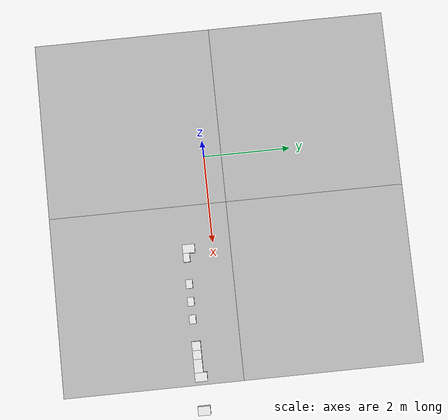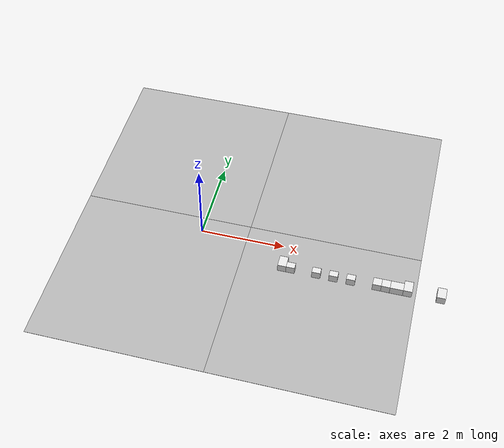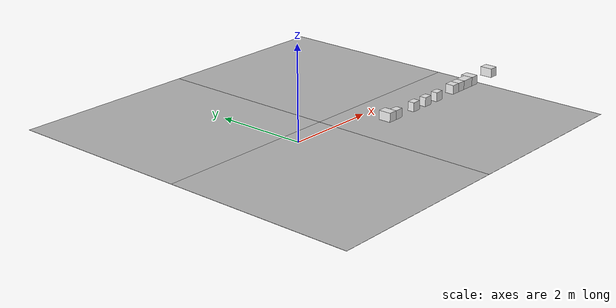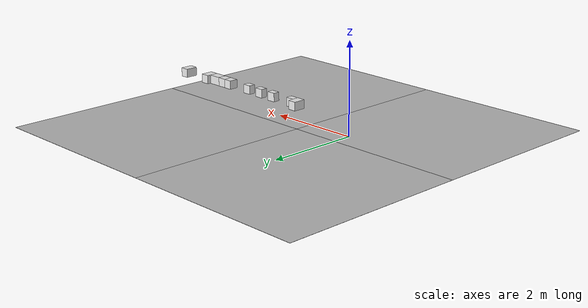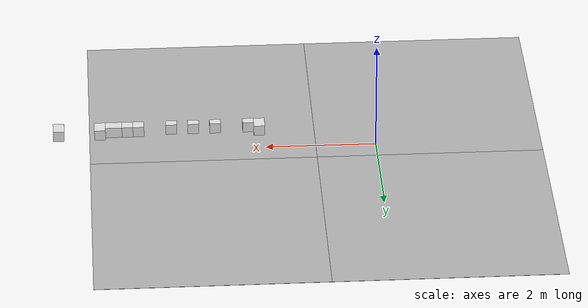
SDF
<sdf version="1.6">
 <world name="default">
  <model name="Tile/0-0">
   <static>1</static>
   <link name="link">
    <collision name="collision">
     <geometry><plane><normal>0 0 1</normal><size>4.096 4.096</size></plane></geometry>
     <surface><friction><ode><mu>100</mu><mu2>50</mu2></ode></friction></surface>
    </collision>
    <visual name="visual">
     <cast_shadows>0</cast_shadows>
     <geometry><plane><normal>0 0 1</normal><size>4.096 4.096</size></plane></geometry>
     <material>
      <script>
       <uri>file://materials/scripts</uri>
       <uri>file://materials/textures</uri>
       <name>Tile/aa44efc093d15b0d016b671cb8dad8b9b5925cd42bc6b331ef31decf4ba6863e</name>
      </script>
     </material>
    </visual>
   </link>
   <pose>-0.952 -1.6520000000000001 0 0 -0 0</pose>
  </model>
  <model name="Tile/0-1">
   <static>1</static>
   <link name="link">
    <collision name="collision">
     <geometry><plane><normal>0 0 1</normal><size>4.096 4.096</size></plane></geometry>
     <surface><friction><ode><mu>100</mu><mu2>50</mu2></ode></friction></surface>
    </collision>
    <visual name="visual">
     <cast_shadows>0</cast_shadows>
     <geometry><plane><normal>0 0 1</normal><size>4.096 4.096</size></plane></geometry>
     <material>
      <script>
       <uri>file://materials/scripts</uri>
       <uri>file://materials/textures</uri>
       <name>Tile/6681b896b1587d54cb69aadeb5fb7247b4d6d500490292053e67105ac88ca889</name>
      </script>
     </material>
    </visual>
   </link>
   <pose>-0.952 2.444 0 0 -0 0</pose>
  </model>
  <model name="Tile/1-0">
   <static>1</static>
   <link name="link">
    <collision name="collision">
     <geometry><plane><normal>0 0 1</normal><size>4.096 4.096</size></plane></geometry>
     <surface><friction><ode><mu>100</mu><mu2>50</mu2></ode></friction></surface>
    </collision>
    <visual name="visual">
     <cast_shadows>0</cast_shadows>
     <geometry><plane><normal>0 0 1</normal><size>4.096 4.096</size></plane></geometry>
     <material>
      <script>
       <uri>file://materials/scripts</uri>
       <uri>file://materials/textures</uri>
       <name>Tile/83ce1d945d5cd6872d24ea16b792fdf03d5378c03847d857c3e796d34dfdd0b5</name>
      </script>
     </material>
    </visual>
   </link>
   <pose>3.144 -1.6520000000000001 0 0 -0 0</pose>
  </model>
  <model name="Tile/1-1">
   <static>1</static>
   <link name="link">
    <collision name="collision">
     <geometry><plane><normal>0 0 1</normal><size>4.096 4.096</size></plane></geometry>
     <surface><friction><ode><mu>100</mu><mu2>50</mu2></ode></friction></surface>
    </collision>
    <visual name="visual">
     <cast_shadows>0</cast_shadows>
     <geometry><plane><normal>0 0 1</normal><size>4.096 4.096</size></plane></geometry>
     <material>
      <script>
       <uri>file://materials/scripts</uri>
       <uri>file://materials/textures</uri>
       <name>Tile/13957a6de1f2afce18d7f1f64dacc2f21295e26ccf498256b0e1a51002cd5706</name>
      </script>
     </material>
    </visual>
   </link>
   <pose>3.144 2.444 0 0 -0 0</pose>
  </model>
  <model name="Obstacle/-5/0">
   <pose>2.1 -0.5599999999999999 0.1 0 0 -0.0</pose>
   <link name="link">
    <inertial>
     <mass>10</mass>
     <inertia>
      <ixx>0.166667</ixx>
      <ixy>0</ixy>
      <ixz>0</ixz>
      <iyy>0.166667</iyy>
      <iyz>0</iyz>
      <izz>0.166667</izz>
     </inertia>
    </inertial>
    <collision name="collision"><geometry><box><size>0.2 0.28 0.2</size></box></geometry></collision>
    <visual name="visual">
     <geometry><box><size>0.2 0.28 0.2</size></box></geometry>
     <material>
      <script><name>Gazebo/White</name><uri>file://media/materials/scripts/gazebo.material</uri></script>
     </material>
    </visual>
   </link>
  </model>
  <model name="Obstacle/-9/0">
   <pose>2.3000000000000003 -0.625 0.1 0 0 -0.0</pose>
   <link name="link">
    <inertial>
     <mass>10</mass>
     <inertia>
      <ixx>0.166667</ixx>
      <ixy>0</ixy>
      <ixz>0</ixz>
      <iyy>0.166667</iyy>
      <iyz>0</iyz>
      <izz>0.166667</izz>
     </inertia>
    </inertial>
    <collision name="collision"><geometry><box><size>0.2 0.15 0.2</size></box></geometry></collision>
    <visual name="visual">
     <geometry><box><size>0.2 0.15 0.2</size></box></geometry>
     <material>
      <script><name>Gazebo/White</name><uri>file://media/materials/scripts/gazebo.material</uri></script>
     </material>
    </visual>
   </link>
  </model>
  <model name="Obstacle/-16/0">
   <pose>2.9000000000000004 -0.625 0.1 0 0 -0.0</pose>
   <link name="link">
    <inertial>
     <mass>10</mass>
     <inertia>
      <ixx>0.166667</ixx>
      <ixy>0</ixy>
      <ixz>0</ixz>
      <iyy>0.166667</iyy>
      <iyz>0</iyz>
      <izz>0.166667</izz>
     </inertia>
    </inertial>
    <collision name="collision"><geometry><box><size>0.2 0.15 0.2</size></box></geometry></collision>
    <visual name="visual">
     <geometry><box><size>0.2 0.15 0.2</size></box></geometry>
     <material>
      <script><name>Gazebo/White</name><uri>file://media/materials/scripts/gazebo.material</uri></script>
     </material>
    </visual>
   </link>
  </model>
  <model name="Obstacle/-23/0">
   <pose>3.3000000000000007 -0.625 0.1 0 0 -0.0</pose>
   <link name="link">
    <inertial>
     <mass>10</mass>
     <inertia>
      <ixx>0.166667</ixx>
      <ixy>0</ixy>
      <ixz>0</ixz>
      <iyy>0.166667</iyy>
      <iyz>0</iyz>
      <izz>0.166667</izz>
     </inertia>
    </inertial>
    <collision name="collision"><geometry><box><size>0.2 0.15 0.2</size></box></geometry></collision>
    <visual name="visual">
     <geometry><box><size>0.2 0.15 0.2</size></box></geometry>
     <material>
      <script><name>Gazebo/White</name><uri>file://media/materials/scripts/gazebo.material</uri></script>
     </material>
    </visual>
   </link>
  </model>
  <model name="Obstacle/-30/0">
   <pose>3.700000000000001 -0.625 0.1 0 0 -0.0</pose>
   <link name="link">
    <inertial>
     <mass>10</mass>
     <inertia>
      <ixx>0.166667</ixx>
      <ixy>0</ixy>
      <ixz>0</ixz>
      <iyy>0.166667</iyy>
      <iyz>0</iyz>
      <izz>0.166667</izz>
     </inertia>
    </inertial>
    <collision name="collision"><geometry><box><size>0.2 0.15 0.2</size></box></geometry></collision>
    <visual name="visual">
     <geometry><box><size>0.2 0.15 0.2</size></box></geometry>
     <material>
      <script><name>Gazebo/White</name><uri>file://media/materials/scripts/gazebo.material</uri></script>
     </material>
    </visual>
   </link>
  </model>
  <model name="Obstacle/-37/0">
   <pose>4.300000000000001 -0.6 0.1 0 0 -0.0</pose>
   <link name="link">
    <inertial>
     <mass>10</mass>
     <inertia>
      <ixx>0.166667</ixx>
      <ixy>0</ixy>
      <ixz>0</ixz>
      <iyy>0.166667</iyy>
      <iyz>0</iyz>
      <izz>0.166667</izz>
     </inertia>
    </inertial>
    <collision name="collision"><geometry><box><size>0.2 0.2 0.2</size></box></geometry></collision>
    <visual name="visual">
     <geometry><box><size>0.2 0.2 0.2</size></box></geometry>
     <material>
      <script><name>Gazebo/White</name><uri>file://media/materials/scripts/gazebo.material</uri></script>
     </material>
    </visual>
   </link>
  </model>
  <model name="Obstacle/-41/0">
   <pose>4.500000000000001 -0.6 0.1 0 0 -0.0</pose>
   <link name="link">
    <inertial>
     <mass>10</mass>
     <inertia>
      <ixx>0.166667</ixx>
      <ixy>0</ixy>
      <ixz>0</ixz>
      <iyy>0.166667</iyy>
      <iyz>0</iyz>
      <izz>0.166667</izz>
     </inertia>
    </inertial>
    <collision name="collision"><geometry><box><size>0.2 0.2 0.2</size></box></geometry></collision>
    <visual name="visual">
     <geometry><box><size>0.2 0.2 0.2</size></box></geometry>
     <material>
      <script><name>Gazebo/White</name><uri>file://media/materials/scripts/gazebo.material</uri></script>
     </material>
    </visual>
   </link>
  </model>
  <model name="Obstacle/-45/0">
   <pose>4.750000000000002 -0.6 0.1 0 0 -0.0</pose>
   <link name="link">
    <inertial>
     <mass>10</mass>
     <inertia>
      <ixx>0.166667</ixx>
      <ixy>0</ixy>
      <ixz>0</ixz>
      <iyy>0.166667</iyy>
      <iyz>0</iyz>
      <izz>0.166667</izz>
     </inertia>
    </inertial>
    <collision name="collision"><geometry><box><size>0.3 0.2 0.2</size></box></geometry></collision>
    <visual name="visual">
     <geometry><box><size>0.3 0.2 0.2</size></box></geometry>
     <material>
      <script><name>Gazebo/White</name><uri>file://media/materials/scripts/gazebo.material</uri></script>
     </material>
    </visual>
   </link>
  </model>
  <model name="Obstacle/-49/0">
   <pose>5.000000000000001 -0.5599999999999999 0.1 0 0 -0.0</pose>
   <link name="link">
    <inertial>
     <mass>10</mass>
     <inertia>
      <ixx>0.166667</ixx>
      <ixy>0</ixy>
      <ixz>0</ixz>
      <iyy>0.166667</iyy>
      <iyz>0</iyz>
      <izz>0.166667</izz>
     </inertia>
    </inertial>
    <collision name="collision"><geometry><box><size>0.2 0.28 0.2</size></box></geometry></collision>
    <visual name="visual">
     <geometry><box><size>0.2 0.28 0.2</size></box></geometry>
     <material>
      <script><name>Gazebo/White</name><uri>file://media/materials/scripts/gazebo.material</uri></script>
     </material>
    </visual>
   </link>
  </model>
  <model name="Obstacle/-56/0">
   <pose>5.750000000000001 -0.5599999999999999 0.1 0 0 -0.0</pose>
   <link name="link">
    <inertial>
     <mass>10</mass>
     <inertia>
      <ixx>0.166667</ixx>
      <ixy>0</ixy>
      <ixz>0</ixz>
      <iyy>0.166667</iyy>
      <iyz>0</iyz>
      <izz>0.166667</izz>
     </inertia>
    </inertial>
    <collision name="collision"><geometry><box><size>0.2 0.28 0.2</size></box></geometry></collision>
    <visual name="visual">
     <geometry><box><size>0.2 0.28 0.2</size></box></geometry>
     <material>
      <script><name>Gazebo/White</name><uri>file://media/materials/scripts/gazebo.material</uri></script>
     </material>
    </visual>
   </link>
  </model>
 </world>
</sdf>
